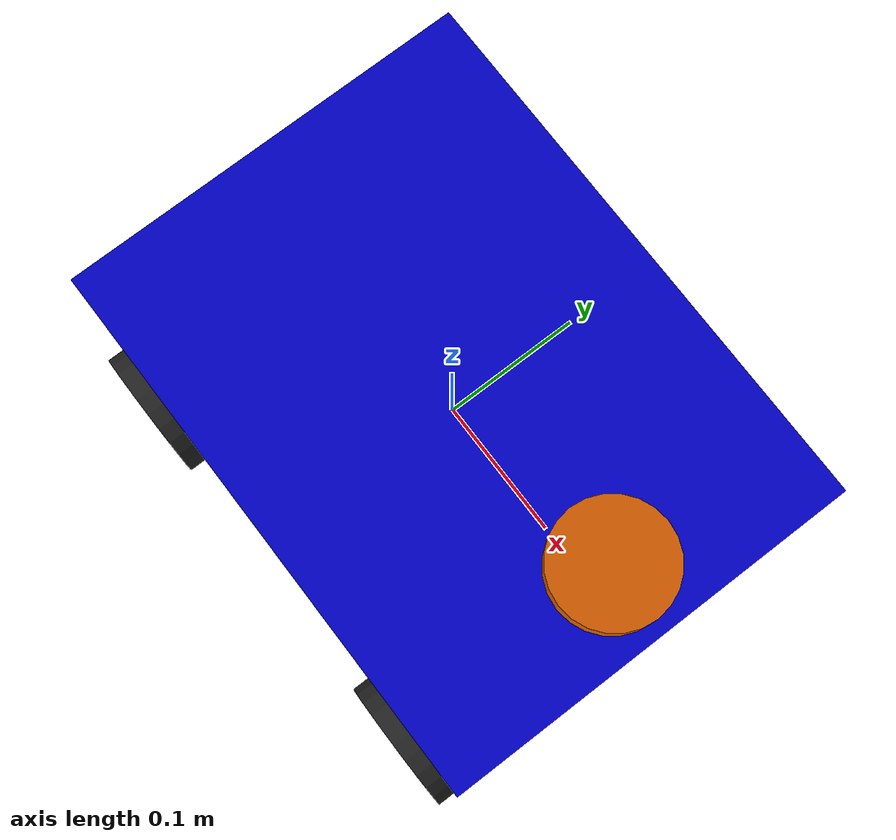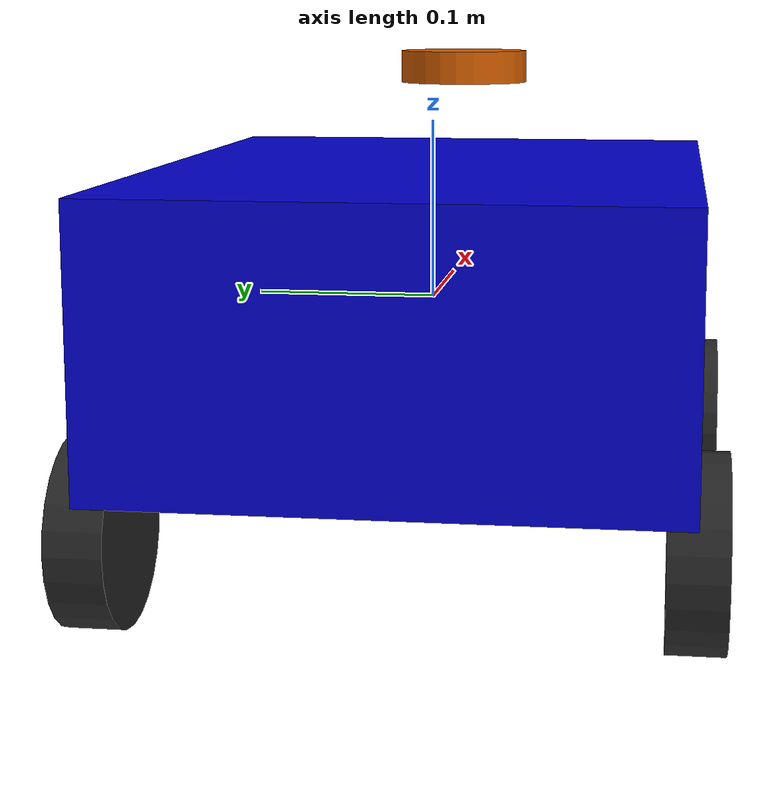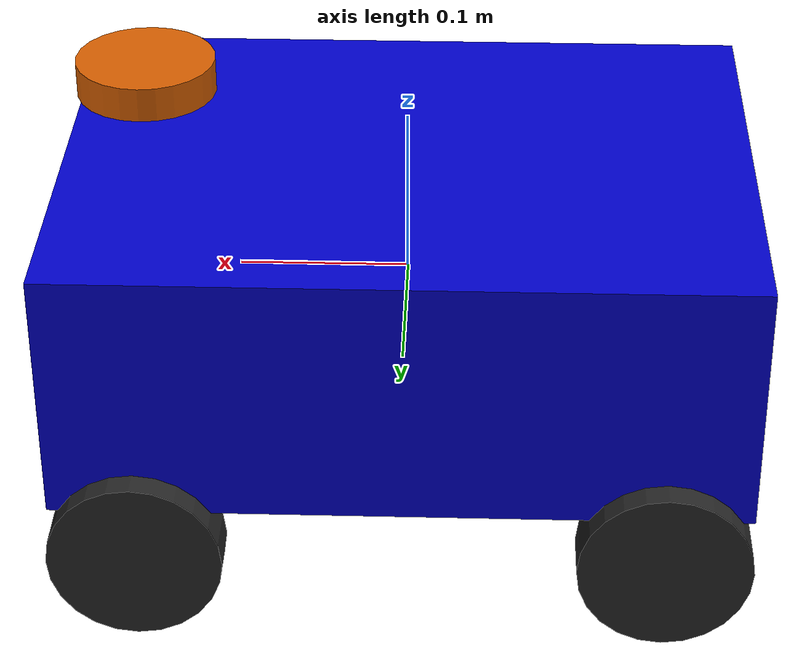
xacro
<?xml version="1.0"?>
<robot xmlns:xacro="http://www.ros.org/wiki/xacro" name="teaching_robot">
  <xacro:arg name="use_lidar" default="true"/>
  <link name="base_link">
    <visual><geometry><box size="0.4 0.3 0.15"/></geometry><material name="blue"><color rgba="0 0 0.8 1"/></material></visual>
    <collision><geometry><box size="0.4 0.3 0.15"/></geometry></collision>
    <inertial><mass value="10"/><inertia ixx="${10*(0.3**2+0.15**2)/12}" ixy="0" ixz="0" iyy="${10*(0.4**2+0.15**2)/12}" iyz="0" izz="${10*(0.4**2+0.3**2)/12}"/></inertial>
  </link>
  <xacro:macro name="mecanum_wheel" params="name x y">
    <joint name="${name}_joint" type="continuous"><parent link="base_link"/><child link="${name}_link"/><origin xyz="${x} ${y} -0.1"/><axis xyz="0 1 0"/></joint>
    <link name="${name}_link"><visual><origin rpy="1.5708 0 0"/><geometry><cylinder radius="0.05" length="0.03"/></geometry><material name="black"><color rgba="0.15 0.15 0.15 1"/></material></visual></link>
  </xacro:macro>
  <xacro:mecanum_wheel name="front_left" x="0.15" y="0.15"/>
  <xacro:mecanum_wheel name="front_right" x="0.15" y="-0.15"/>
  <xacro:mecanum_wheel name="rear_left" x="-0.15" y="0.15"/>
  <xacro:mecanum_wheel name="rear_right" x="-0.15" y="-0.15"/>
  <xacro:if value="$(arg use_lidar)">
    <joint name="lidar_joint" type="fixed"><parent link="base_link"/><child link="lidar_link"/><origin xyz="0.15 0 0.125"/></joint>
    <link name="lidar_link"><visual><geometry><cylinder radius="0.04" length="0.02"/></geometry></visual></link>
  </xacro:if>
</robot>
